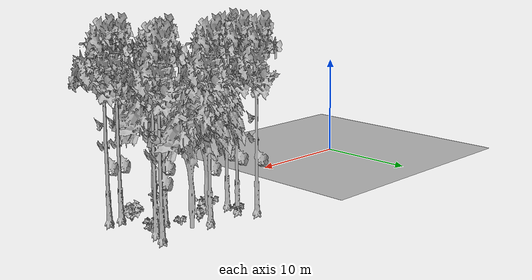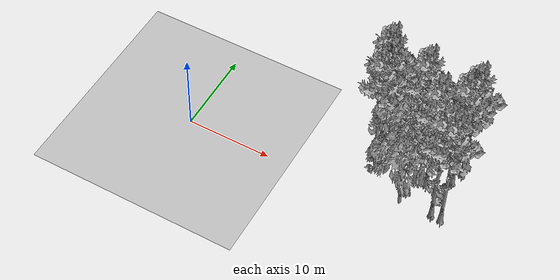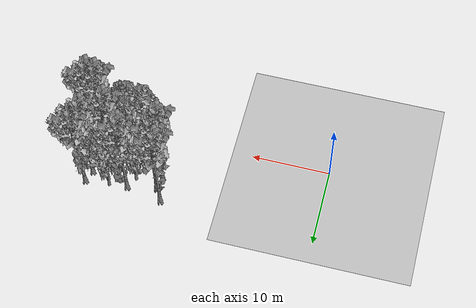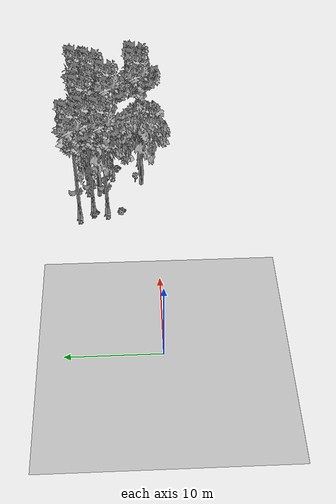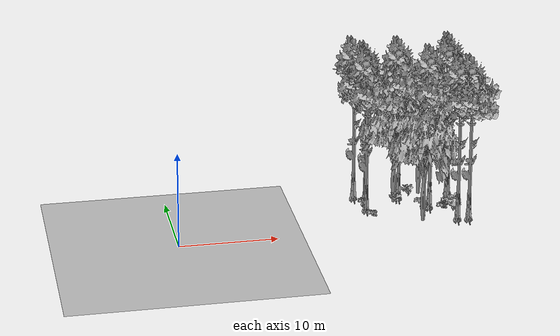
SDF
<sdf version="1.7">
 <world name="default">
  <model name="ground_plane">
   <static>1</static>
   <link name="link">
    <collision name="collision">
     <pose>-50 0 0 0 -0 0</pose>
     <geometry><plane><normal>0 0 1</normal><size>80 80</size></plane></geometry>
     <surface><contact><ode><min_depth>0.01</min_depth><max_vel>0</max_vel></ode></contact></surface>
    </collision>
    <visual name="grass">
     <cast_shadows>0</cast_shadows>
     <geometry>
      <mesh>
       <scale>0.46714285714285714 0.46714285714285714 0.1</scale>
       <uri>file://grass_plane/meshes/grass_plane.dae</uri>
      </mesh>
     </geometry>
    </visual>
   </link>
  </model>
  <model name="Tree 99">
   <static>1</static>
   <pose>29.10909293638008 6.886443123485279 0 1.57079 -0 0</pose>
   <link name="link">
    <collision name="collision">
     <geometry><mesh><scale>3.5 5 3.5</scale><uri>model://tree_9/meshes/tree_9.obj</uri></mesh></geometry>
    </collision>
    <visual name="visual">
     <geometry><mesh><scale>3.5 5 3.5</scale><uri>model://tree_9/meshes/tree_9.obj</uri></mesh></geometry>
    </visual>
   </link>
  </model>
  <model name="Tree 101">
   <static>1</static>
   <pose>20.27197279416891 5.695098724019793 0 1.57079 -0 0</pose>
   <link name="link">
    <collision name="collision">
     <geometry><mesh><scale>3.5 5 3.5</scale><uri>model://tree_9/meshes/tree_9.obj</uri></mesh></geometry>
    </collision>
    <visual name="visual">
     <geometry><mesh><scale>3.5 5 3.5</scale><uri>model://tree_9/meshes/tree_9.obj</uri></mesh></geometry>
    </visual>
   </link>
  </model>
  <model name="Tree 200">
   <static>1</static>
   <pose>25.172588576268723 1.6540315098579867 0 1.57079 -0 0</pose>
   <link name="link">
    <collision name="collision">
     <geometry><mesh><scale>3.5 5 3.5</scale><uri>model://tree_2/meshes/tree_2.obj</uri></mesh></geometry>
    </collision>
    <visual name="visual">
     <geometry><mesh><scale>3.5 5 3.5</scale><uri>model://tree_2/meshes/tree_2.obj</uri></mesh></geometry>
    </visual>
   </link>
  </model>
  <model name="Tree 285">
   <static>1</static>
   <pose>30.083916656777248 1.715690164628711 0 1.57079 -0 0</pose>
   <link name="link">
    <collision name="collision">
     <geometry><mesh><scale>3.5 5 3.5</scale><uri>model://tree_9/meshes/tree_9.obj</uri></mesh></geometry>
    </collision>
    <visual name="visual">
     <geometry><mesh><scale>3.5 5 3.5</scale><uri>model://tree_9/meshes/tree_9.obj</uri></mesh></geometry>
    </visual>
   </link>
  </model>
  <model name="Tree 329">
   <static>1</static>
   <pose>26.366263765590304 8.243453864935624 0 1.57079 -0 0</pose>
   <link name="link">
    <collision name="collision">
     <geometry><mesh><scale>3.5 5 3.5</scale><uri>model://tree_2/meshes/tree_2.obj</uri></mesh></geometry>
    </collision>
    <visual name="visual">
     <geometry><mesh><scale>3.5 5 3.5</scale><uri>model://tree_2/meshes/tree_2.obj</uri></mesh></geometry>
    </visual>
   </link>
  </model>
  <model name="Tree 346">
   <static>1</static>
   <pose>26.82088928662948 5.159343302922039 0 1.57079 -0 0</pose>
   <link name="link">
    <collision name="collision">
     <geometry><mesh><scale>3.5 5 3.5</scale><uri>model://tree_9/meshes/tree_9.obj</uri></mesh></geometry>
    </collision>
    <visual name="visual">
     <geometry><mesh><scale>3.5 5 3.5</scale><uri>model://tree_9/meshes/tree_9.obj</uri></mesh></geometry>
    </visual>
   </link>
  </model>
  <model name="Tree 368">
   <static>1</static>
   <pose>23.308393003107895 6.638819091540675 0 1.57079 -0 0</pose>
   <link name="link">
    <collision name="collision">
     <geometry><mesh><scale>3.5 5 3.5</scale><uri>model://tree_2/meshes/tree_2.obj</uri></mesh></geometry>
    </collision>
    <visual name="visual">
     <geometry><mesh><scale>3.5 5 3.5</scale><uri>model://tree_2/meshes/tree_2.obj</uri></mesh></geometry>
    </visual>
   </link>
  </model>
  <model name="Tree 384">
   <static>1</static>
   <pose>29.61924261287912 8.358443284670585 0 1.57079 -0 0</pose>
   <link name="link">
    <collision name="collision">
     <geometry><mesh><scale>3.5 5 3.5</scale><uri>model://tree_9/meshes/tree_9.obj</uri></mesh></geometry>
    </collision>
    <visual name="visual">
     <geometry><mesh><scale>3.5 5 3.5</scale><uri>model://tree_9/meshes/tree_9.obj</uri></mesh></geometry>
    </visual>
   </link>
  </model>
  <model name="Tree 583">
   <static>1</static>
   <pose>19.64617525100209 8.877851594317292 0 1.57079 -0 0</pose>
   <link name="link">
    <collision name="collision">
     <geometry><mesh><scale>3.5 5 3.5</scale><uri>model://tree_9/meshes/tree_9.obj</uri></mesh></geometry>
    </collision>
    <visual name="visual">
     <geometry><mesh><scale>3.5 5 3.5</scale><uri>model://tree_9/meshes/tree_9.obj</uri></mesh></geometry>
    </visual>
   </link>
  </model>
  <model name="Tree 586">
   <static>1</static>
   <pose>20.54584707449756 7.328435175413787 0 1.57079 -0 0</pose>
   <link name="link">
    <collision name="collision">
     <geometry><mesh><scale>3.5 5 3.5</scale><uri>model://tree_9/meshes/tree_9.obj</uri></mesh></geometry>
    </collision>
    <visual name="visual">
     <geometry><mesh><scale>3.5 5 3.5</scale><uri>model://tree_9/meshes/tree_9.obj</uri></mesh></geometry>
    </visual>
   </link>
  </model>
  <model name="Tree 625">
   <static>1</static>
   <pose>28.942831668441613 1.8207683048490964 0 1.57079 -0 0</pose>
   <link name="link">
    <collision name="collision">
     <geometry><mesh><scale>3.5 5 3.5</scale><uri>model://tree_9/meshes/tree_9.obj</uri></mesh></geometry>
    </collision>
    <visual name="visual">
     <geometry><mesh><scale>3.5 5 3.5</scale><uri>model://tree_9/meshes/tree_9.obj</uri></mesh></geometry>
    </visual>
   </link>
  </model>
  <model name="Tree 633">
   <static>1</static>
   <pose>24.228929741750896 7.972803481389818 0 1.57079 -0 0</pose>
   <link name="link">
    <collision name="collision">
     <geometry><mesh><scale>3.5 5 3.5</scale><uri>model://tree_9/meshes/tree_9.obj</uri></mesh></geometry>
    </collision>
    <visual name="visual">
     <geometry><mesh><scale>3.5 5 3.5</scale><uri>model://tree_9/meshes/tree_9.obj</uri></mesh></geometry>
    </visual>
   </link>
  </model>
  <model name="Bush 1">
   <static>1</static>
   <pose>28.914745126215905 3.285678960943102 0 1.57079 -0 0</pose>
   <link name="link">
    <collision name="collision">
     <geometry><mesh><scale>2 2 2</scale><uri>model://bush_1/meshes/bush_1.obj</uri></mesh></geometry>
     <surface><contact><collide_without_contact>false</collide_without_contact></contact></surface>
    </collision>
    <visual name="visual">
     <geometry><mesh><scale>2 2 2</scale><uri>model://bush_1/meshes/bush_1.obj</uri></mesh></geometry>
    </visual>
   </link>
  </model>
  <model name="Bush 16">
   <static>1</static>
   <pose>28.0178589068352 4.592557315047202 0 1.57079 -0 0</pose>
   <link name="link">
    <collision name="collision">
     <geometry><mesh><scale>2 2 2</scale><uri>model://bush_2/meshes/bush_2.obj</uri></mesh></geometry>
     <surface><contact><collide_without_contact>false</collide_without_contact></contact></surface>
    </collision>
    <visual name="visual">
     <geometry><mesh><scale>2 2 2</scale><uri>model://bush_2/meshes/bush_2.obj</uri></mesh></geometry>
    </visual>
   </link>
  </model>
  <model name="Bush 85">
   <static>1</static>
   <pose>28.79191169673109 5.792487803032067 0 1.57079 -0 0</pose>
   <link name="link">
    <collision name="collision">
     <geometry><mesh><scale>2 2 2</scale><uri>model://bush_2/meshes/bush_2.obj</uri></mesh></geometry>
     <surface><contact><collide_without_contact>false</collide_without_contact></contact></surface>
    </collision>
    <visual name="visual">
     <geometry><mesh><scale>2 2 2</scale><uri>model://bush_2/meshes/bush_2.obj</uri></mesh></geometry>
    </visual>
   </link>
  </model>
  <model name="Bush 123">
   <static>1</static>
   <pose>20.53892380477881 4.050476382356216 0 1.57079 -0 0</pose>
   <link name="link">
    <collision name="collision">
     <geometry><mesh><scale>2 2 2</scale><uri>model://bush_2/meshes/bush_2.obj</uri></mesh></geometry>
     <surface><contact><collide_without_contact>false</collide_without_contact></contact></surface>
    </collision>
    <visual name="visual">
     <geometry><mesh><scale>2 2 2</scale><uri>model://bush_2/meshes/bush_2.obj</uri></mesh></geometry>
    </visual>
   </link>
  </model>
  <model name="Bush 166">
   <static>1</static>
   <pose>25.995783291362613 6.114611987958256 0 1.57079 -0 0</pose>
   <link name="link">
    <collision name="collision">
     <geometry><mesh><scale>2 2 2</scale><uri>model://bush_2/meshes/bush_2.obj</uri></mesh></geometry>
     <surface><contact><collide_without_contact>false</collide_without_contact></contact></surface>
    </collision>
    <visual name="visual">
     <geometry><mesh><scale>2 2 2</scale><uri>model://bush_2/meshes/bush_2.obj</uri></mesh></geometry>
    </visual>
   </link>
  </model>
  <model name="Bush 204">
   <static>1</static>
   <pose>20.316632597232548 7.133160340089034 0 1.57079 -0 0</pose>
   <link name="link">
    <collision name="collision">
     <geometry><mesh><scale>2 2 2</scale><uri>model://bush_2/meshes/bush_2.obj</uri></mesh></geometry>
     <surface><contact><collide_without_contact>false</collide_without_contact></contact></surface>
    </collision>
    <visual name="visual">
     <geometry><mesh><scale>2 2 2</scale><uri>model://bush_2/meshes/bush_2.obj</uri></mesh></geometry>
    </visual>
   </link>
  </model>
  <model name="Bush 243">
   <static>1</static>
   <pose>20.341178133967347 7.2161760963885655 0 1.57079 -0 0</pose>
   <link name="link">
    <collision name="collision">
     <geometry><mesh><scale>2 2 2</scale><uri>model://bush_2/meshes/bush_2.obj</uri></mesh></geometry>
     <surface><contact><collide_without_contact>false</collide_without_contact></contact></surface>
    </collision>
    <visual name="visual">
     <geometry><mesh><scale>2 2 2</scale><uri>model://bush_2/meshes/bush_2.obj</uri></mesh></geometry>
    </visual>
   </link>
  </model>
  <model name="Bush 495">
   <static>1</static>
   <pose>23.546284763770792 5.992914623509648 0 1.57079 -0 0</pose>
   <link name="link">
    <collision name="collision">
     <geometry><mesh><scale>2 2 2</scale><uri>model://bush_0/meshes/bush_0.obj</uri></mesh></geometry>
     <surface><contact><collide_without_contact>false</collide_without_contact></contact></surface>
    </collision>
    <visual name="visual">
     <geometry><mesh><scale>2 2 2</scale><uri>model://bush_0/meshes/bush_0.obj</uri></mesh></geometry>
    </visual>
   </link>
  </model>
  <model name="Bush 506">
   <static>1</static>
   <pose>25.21512327399813 7.623698533303582 0 1.57079 -0 0</pose>
   <link name="link">
    <collision name="collision">
     <geometry><mesh><scale>2 2 2</scale><uri>model://bush_0/meshes/bush_0.obj</uri></mesh></geometry>
     <surface><contact><collide_without_contact>false</collide_without_contact></contact></surface>
    </collision>
    <visual name="visual">
     <geometry><mesh><scale>2 2 2</scale><uri>model://bush_0/meshes/bush_0.obj</uri></mesh></geometry>
    </visual>
   </link>
  </model>
  <model name="Bush 557">
   <static>1</static>
   <pose>25.657465610782893 2.4155837119270203 0 1.57079 -0 0</pose>
   <link name="link">
    <collision name="collision">
     <geometry><mesh><scale>2 2 2</scale><uri>model://bush_5/meshes/bush_5.obj</uri></mesh></geometry>
     <surface><contact><collide_without_contact>false</collide_without_contact></contact></surface>
    </collision>
    <visual name="visual">
     <geometry><mesh><scale>2 2 2</scale><uri>model://bush_5/meshes/bush_5.obj</uri></mesh></geometry>
    </visual>
   </link>
  </model>
  <model name="Bush 558">
   <static>1</static>
   <pose>28.07767418574845 4.62423942289908 0 1.57079 -0 0</pose>
   <link name="link">
    <collision name="collision">
     <geometry><mesh><scale>2 2 2</scale><uri>model://bush_2/meshes/bush_2.obj</uri></mesh></geometry>
     <surface><contact><collide_without_contact>false</collide_without_contact></contact></surface>
    </collision>
    <visual name="visual">
     <geometry><mesh><scale>2 2 2</scale><uri>model://bush_2/meshes/bush_2.obj</uri></mesh></geometry>
    </visual>
   </link>
  </model>
 </world>
</sdf>
